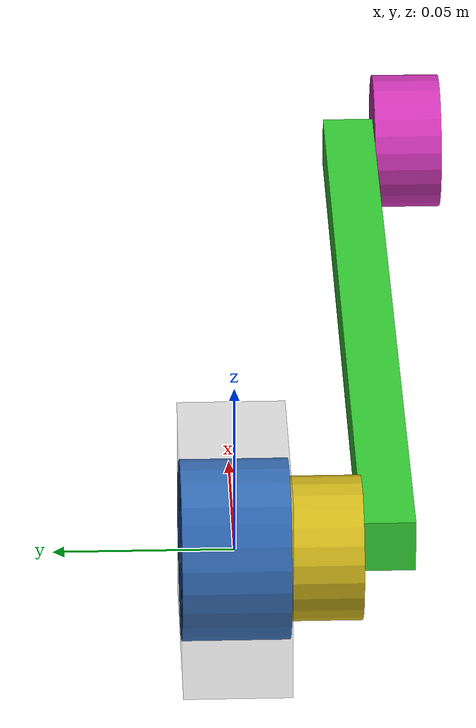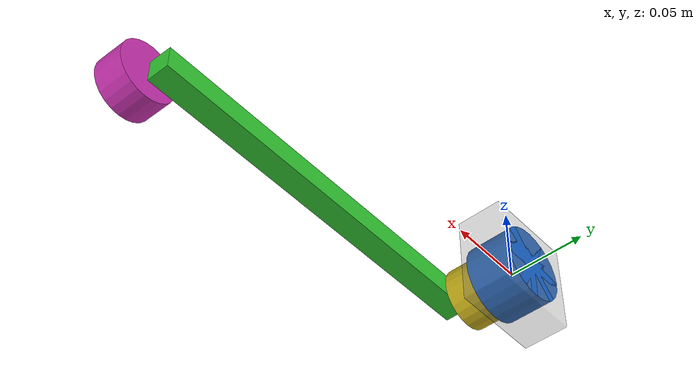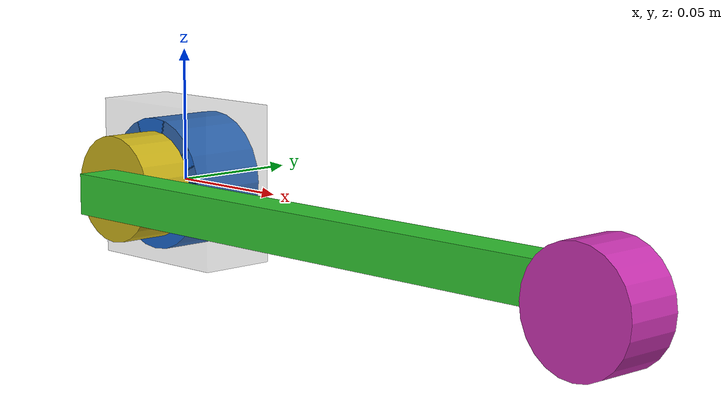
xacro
<?xml version="1.0"?>
<robot name="one_dof_pendulum" xmlns:xacro="http://www.ros.org/wiki/xacro">

  <!-- Material definitions -->
  <material name="motor_housing">
    <color rgba="0.5 0.5 0.5 0.3"/>
  </material>

  <material name="motor_core">
    <color rgba="0.1 0.4 0.8 1.0"/> <!-- blueish -->
  </material>

  <material name="gearbox">
    <color rgba="0.8 0.7 0.1 1.0"/> <!-- yellow/gold -->
  </material>

  <material name="arm">
    <color rgba="0.2 0.8 0.2 1.0"/> <!-- green -->
  </material>

  <material name="payload">
    <color rgba="0.8 0.2 0.7 1.0"/> <!-- magenta/pink -->
  </material>

  <!-- Constants -->
  <xacro:arg name="arm_length" default="0.25"/>
  <xacro:arg name="payload_mass" default="0.1"/>
  <xacro:arg name="arm_mass" default="0.1"/>

  <!-- Parameter definitions for easy adjustment -->
  <xacro:property name="motor_diameter" value="0.05"/>
  <xacro:property name="motor_radius" value="${motor_diameter/2}"/>
  <xacro:property name="motor_length" value="0.03"/>
  <xacro:property name="motor_mass" value="0.04"/>
  <xacro:property name="motor_inertia_zz" value="${10**2 * (0.58/100**2)}"/> <!-- J_load = N**2 * J_motor and kg*cm^2 -> kg*m^2 -->
  <xacro:property name="motor_inertia_xx_yy" value="${motor_inertia_zz * (0.5 + (motor_length**2/(6*motor_radius**2)))}"/> <!-- given the zz, calculate the xx and yy -->

  <xacro:property name="gearbox_diameter" value="0.04"/>
  <xacro:property name="gearbox_radius" value="${gearbox_diameter/2}"/>
  <xacro:property name="gearbox_length" value="0.02"/>
  <xacro:property name="gearbox_mass" value="0.04"/>
  <xacro:property name="gearbox_inertia_zz" value="${0.13/100**2}"/> <!-- kg*cm^2 -> kg*m^2 -->
  <xacro:property name="gearbox_inertia_xx_yy" value="${gearbox_inertia_zz * (0.5 + (gearbox_length**2/(6*gearbox_radius**2)))}"/> <!-- given the zz, calculate the xx and yy -->

  <xacro:property name="arm_width" value="0.015"/>
  <xacro:property name="arm_length" value="$(arg arm_length)"/>
  <xacro:property name="arm_mass" value="$(arg arm_mass)"/>
  <xacro:property name="arm_inertia_xx_zz" value="${(1/12) * arm_mass * arm_length **2}"/>

  <xacro:property name="payload_diameter" value="0.04"/>
  <xacro:property name="payload_radius" value="${payload_diameter/2}"/>
  <xacro:property name="payload_thickness" value="0.02"/>
  <xacro:property name="payload_mass" value="$(arg payload_mass)"/>
  <!-- You don't acctually need the parrallel axis thoerm, urdf iwll handle that! -->
  <xacro:property name="payload_inertia_zz" value="${(0.5 * payload_mass * payload_radius**2)}"/> <!-- interia + parrallel axis theorem -->
  <xacro:property name="payload_inertia_xx_yy" value="${((1/12) * payload_mass * (3*payload_radius**2 + payload_thickness**2))}"/> <!-- interia + parrallel axis theorem -->

  <link name="base_link"/>

  <link name="motor_housing">
    <visual>
      <geometry>
        <box size="${motor_diameter*1.2} ${motor_diameter*1.2} ${motor_length}"/>
      </geometry>
      <material name="motor_housing"/>
    </visual>
  </link>

  <joint name="base_link_to_motor_housing" type="fixed">
    <parent link="base_link"/>
    <child link="motor_housing"/>
    <origin xyz="0 0 0.0" rpy="${pi/2} 0 0"/>
  </joint>

  <!-- Motor core cylinder -->
  <link name="motor_core">
    <visual>
      <geometry>
        <cylinder radius="${motor_diameter/2}" length="${motor_length}"/>
      </geometry>
      <material name="motor_core"/>
    </visual>
    <collision>
      <geometry>
        <cylinder radius="${motor_diameter/2}" length="${motor_length}"/>
      </geometry>
    </collision>
    <inertial>
      <origin xyz="0 0 0"/>
      <mass value="${motor_mass}"/>
      <inertia ixx="${motor_inertia_xx_yy}" ixy="0" ixz="0"
                iyy="${motor_inertia_xx_yy}" iyz="0"
                izz="${motor_inertia_zz}"/>
    </inertial>

  </link>

  <!-- Joint connecting motor core to base -->
  <joint name="joint_1" type="revolute">
    <parent link="motor_housing"/>
    <child link="motor_core"/>
    <origin xyz="0 0 0" rpy="0 0 0"/>
    <axis xyz="0 0 1"/>
    <limit lower="-3.14159" upper="3.14159" effort="10" velocity="5"/>
  </joint>

  <!-- Gearbox cylinder -->
  <link name="gearbox">
    <visual>
      <geometry>
        <cylinder radius="${gearbox_diameter/2}" length="${gearbox_length}"/>
      </geometry>
      <material name="gearbox"/>
    </visual>
    <collision>
      <geometry>
        <cylinder radius="${gearbox_diameter/2}" length="${gearbox_length}"/>
      </geometry>
    </collision>
    <inertial>
      <origin xyz="0 0 0"/>
      <mass value="${gearbox_mass}"/>
      <inertia ixx="${gearbox_inertia_xx_yy}" ixy="0" ixz="0"
                iyy="${gearbox_inertia_xx_yy}" iyz="0"
                izz="${gearbox_inertia_zz}"/>
    </inertial>
  </link>

  <!-- Joint connecting gearbox to motor core -->
  <joint name="gearbox_joint" type="fixed">
    <parent link="motor_core"/>
    <child link="gearbox"/>
    <origin xyz="0 0 ${gearbox_length/2 + motor_length/2}" rpy="0 0 0"/>
  </joint>

  <!-- Pendulum arm (thin rectangular link) -->
  <link name="arm">
    <visual>
      <origin xyz="${arm_length/2} 0 0" rpy="0 ${pi/2} 0"/>
      <geometry>
        <box size="${arm_width} ${arm_width} ${arm_length}"/>
      </geometry>
      <material name="arm"/>
    </visual>
    <collision>
      <origin xyz="${arm_length/2} 0 0" rpy="0 ${pi/2} 0"/>
      <geometry>
        <box size="${arm_width} ${arm_width} ${arm_length}"/>
      </geometry>
    </collision>
    <inertial>
      <origin xyz="${arm_length/2} 0 0"/>
      <mass value="${arm_mass}"/>
      <inertia ixx="1e-6" ixy="0" ixz="0"
                iyy="${arm_inertia_xx_zz}" iyz="0"
                izz="${arm_inertia_xx_zz}"/>
    </inertial>
  </link>

  <!-- Joint connecting pendulum arm to gearbox (revolute joint) -->
  <joint name="gearbox_to_arm" type="fixed">
    <parent link="gearbox"/>
    <child link="arm"/>
    <origin xyz="0 0 ${gearbox_length/2 + arm_width/2}" rpy="0 0 0"/>
    <axis xyz="0 0 1"/>
    <limit lower="-3.14159" upper="3.14159" effort="10" velocity="5"/>
    <!-- Zero position is when pendulum is pointing down -->
  </joint>

  <!-- Weight disk at the end of pendulum -->
  <link name="payload">
    <visual>
      <geometry>
        <cylinder radius="${payload_diameter/2}" length="${payload_thickness}"/>
      </geometry>
      <material name="payload"/>
    </visual>
    <collision>
      <geometry>
        <cylinder radius="${payload_diameter/2}" length="${payload_thickness}"/>
      </geometry>
    </collision>
    <inertial>
      <origin xyz="0 0 0"/>
      <mass value="${payload_mass}"/>
      <inertia ixx="${payload_inertia_xx_yy}" ixy="0" ixz="0"
                    iyy="${payload_inertia_xx_yy}" iyz="0"
                    izz="${payload_inertia_zz}"/>
    </inertial>
  </link>

  <!-- Joint connecting payload to pendulum arm -->
  <joint name="arm_to_payload" type="fixed">
    <parent link="arm"/>
    <child link="payload"/>
    <origin xyz="${arm_length} 0 ${payload_thickness/2 + arm_width/2}" rpy="0 0 0"/>
  </joint>

</robot>
